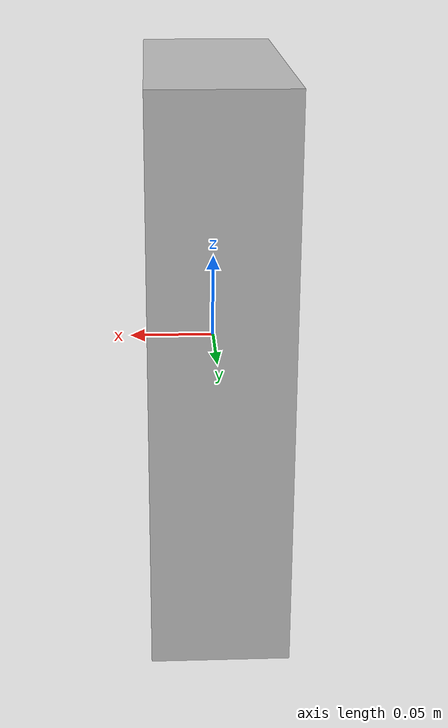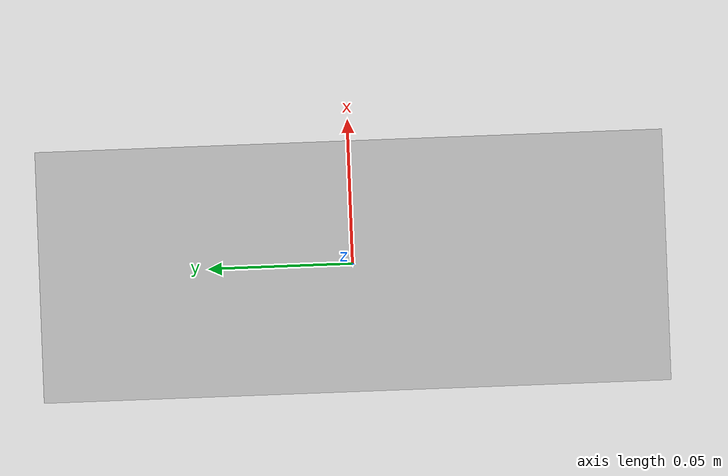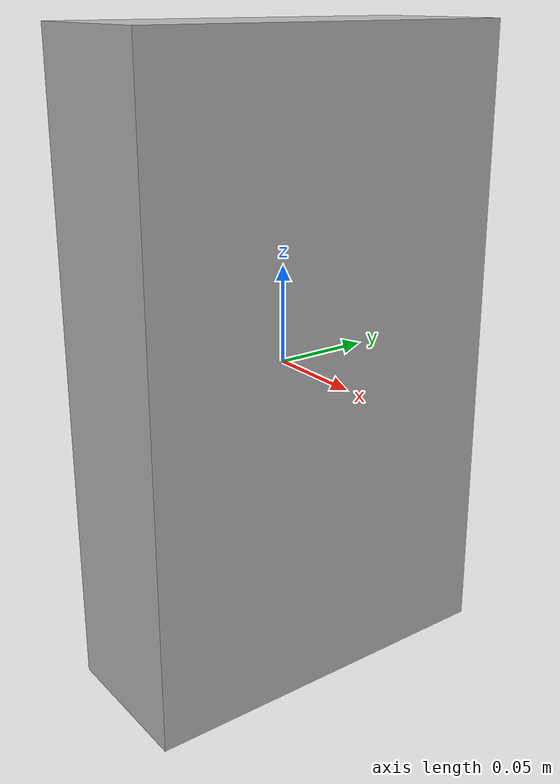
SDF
<?xml version='1.0'?>
<sdf version='1.6'>
  <model name='cereal1'>
    <link name='link_0'>
      <inertial>
        <mass>0.2</mass>
        <inertia>
          <ixx>0.0024816</ixx>
          <ixy>0</ixy>
          <ixz>0</ixz>
          <iyy>0.0019217</iyy>
          <iyz>0</iyz>
          <izz>0.0007733</izz>
        </inertia>
        <pose frame=''>0 0 0.0 0 -0 0</pose>
      </inertial>
      <pose frame=''>-0 -0 0.0 0 -0 0</pose>
      <gravity>1</gravity>
      <self_collide>0</self_collide>
      <kinematic>0</kinematic>
      <enable_wind>0</enable_wind>
      <visual name='visual'>
        <pose frame=''>0.0 0.00 0.0 0 0 0</pose>
        <geometry>
          <mesh>
          	<uri>model:///cereal1/meshes/cereal1.dae</uri>
	  				<scale>0.5 0.5 0.5</scale>
        	</mesh>
        </geometry>
        <transparency>0</transparency>
        <cast_shadows>1</cast_shadows>
      </visual>
      <collision name='collision'>
        <laser_retro>0</laser_retro>
        <max_contacts>10</max_contacts>
        <pose frame=''>0 0 0 0 -0 0</pose>
        <geometry>
          <box>
            <size>0.08 0.20 0.33</size>
          </box>
        </geometry>
        <surface>
          <friction>
            <ode>
              <mu>1</mu>
              <mu2>1</mu2>
              <fdir1>0 0 0</fdir1>
              <slip1>0</slip1>
              <slip2>0</slip2>
            </ode>
            <torsional>
              <coefficient>1</coefficient>
              <patch_radius>0</patch_radius>
              <surface_radius>0</surface_radius>
              <use_patch_radius>1</use_patch_radius>
              <ode>
                <slip>0</slip>
              </ode>
            </torsional>
          </friction>
          <bounce>
            <restitution_coefficient>0</restitution_coefficient>
            <threshold>1e+06</threshold>
          </bounce>
          <contact>
            <collide_without_contact>0</collide_without_contact>
            <collide_without_contact_bitmask>1</collide_without_contact_bitmask>
            <collide_bitmask>1</collide_bitmask>
            <ode>
              <soft_cfm>0</soft_cfm>
              <soft_erp>0.2</soft_erp>
              <kp>1e+13</kp>
              <kd>1</kd>
              <max_vel>0.01</max_vel>
              <min_depth>0.001</min_depth>
            </ode>
            <bullet>
              <split_impulse>1</split_impulse>
              <split_impulse_penetration_threshold>-0.01</split_impulse_penetration_threshold>
              <soft_cfm>0</soft_cfm>
              <soft_erp>0.2</soft_erp>
              <kp>1e+13</kp>
              <kd>1</kd>
            </bullet>
          </contact>
        </surface>
      </collision>
    </link>
    <static>0</static>
    <allow_auto_disable>1</allow_auto_disable>
  </model>
</sdf>
